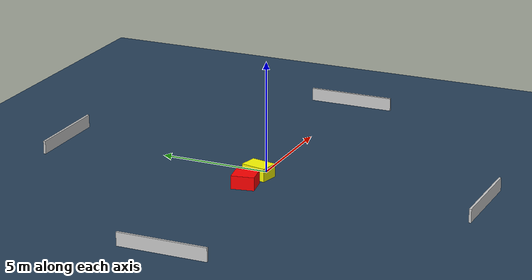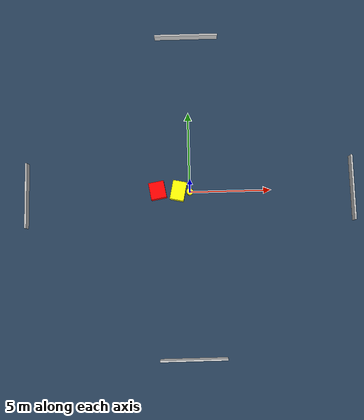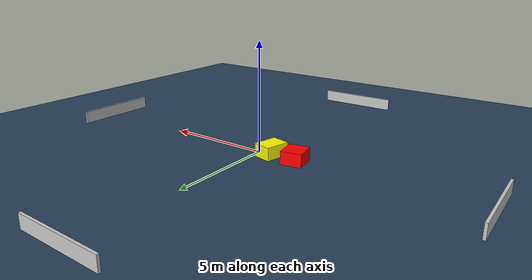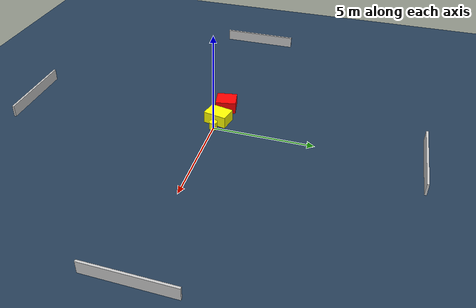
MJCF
<?xml version="1.0" ?>
<mujoco model="generated_environment">
  <option timestep="0.01" integrator="RK4" cone="elliptic"/>
  <default>
    <geom density="1"/>
  </default>
  <asset>
    <texture builtin="gradient" height="3072" name="skybox" rgb1="0.3 0.5 0.7" rgb2="0 0 0" type="skybox" width="512"/>
    <texture builtin="checker" height="300" name="groundplane" rgb1="0.2 0.3 0.4" rgb2="0.1 0.2 0.3" type="2d" width="300"/>
    <material name="groundplane" reflectance="0.2" texrepeat="5 5" texture="groundplane"/>
  </asset>
  <worldbody>
    <light dir="0 0 -1" directional="true" pos="0 0 1.5"/>
    <geom condim="3" friction="0.5 0.005 0.001" material="groundplane" name="floor" pos="0 0 0" size="0 0 0.05" type="plane"/>
    <body name="walls">
      <geom name="wall_1" condim="4" pos="-10.0 0.0 0.3" rgba="0.800000011920929 0.800000011920929 0.800000011920929 1.0" size="0.05 2.0 0.3" type="box"/>
      <geom name="wall_2" condim="4" pos="10.0 0.0 0.3" rgba="0.800000011920929 0.800000011920929 0.800000011920929 1.0" size="0.05 2.0 0.3" type="box"/>
      <geom name="wall_3" condim="4" pos="0.0 -10.0 0.3" rgba="0.800000011920929 0.800000011920929 0.800000011920929 1.0" size="2.0 0.05 0.3" type="box"/>
      <geom name="wall_4" condim="4" pos="0.0 10.0 0.3" rgba="0.800000011920929 0.800000011920929 0.800000011920929 1.0" size="2.0 0.05 0.3" type="box"/>
    </body>
    <body name="robot">
      <joint name="joint_x" type="slide" pos="0 0 0" axis="1 0 0"/>
      <joint name="joint_y" type="slide" pos="0 0 0" axis="0 1 0"/>
      <geom name="robot" type="cylinder" pos="0.0 0.0 0.2" size="0.2 0.2 0.0" mass="5.0" friction="1.0 0.005 0.0001" condim="4" rgba="1.0 1.0 0.0 1.0"/>
    </body>
    <body name="obstacle_1_movable">
      <geom name="obstacle_1_movable" condim="4" pos="-0.6976254137905528 0.054797120055322654 0.3" euler="0 0 78.14612003068835" friction="0.0 0.005 0.001" rgba="1.0 1.0 0.0 1.0" size="0.5821113080953564 0.42567791265357524 0.3" type="box" mass="0.1"/>
      <joint type="free"/>
    </body>
    <body name="obstacle_2_static">
      <geom name="obstacle_2_static" condim="4" pos="-1.9739783447797552 0.10445620848494176 0.3" euler="0 0 10.151030860492195" friction="0.0 0.005 0.001" rgba="1.0 0.0 0.0 1.0" size="0.4742345533667605 0.5151906665717778 0.3" type="box"/>
    </body>
  </worldbody>
  <actuator>
    <motor name="actuator_x" joint="joint_x" gear="1" ctrlrange="-1 1"/>
    <motor name="actuator_y" joint="joint_y" gear="1" ctrlrange="-1 1"/>
  </actuator>
</mujoco>
